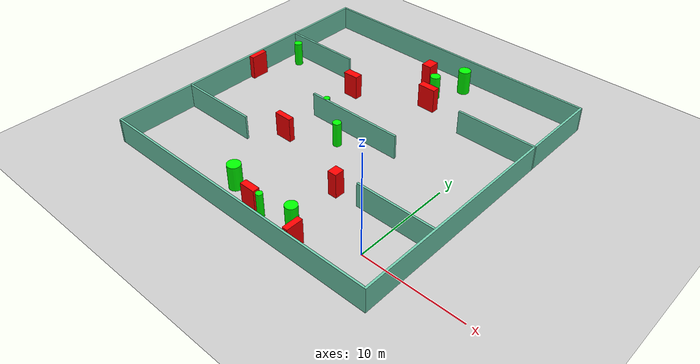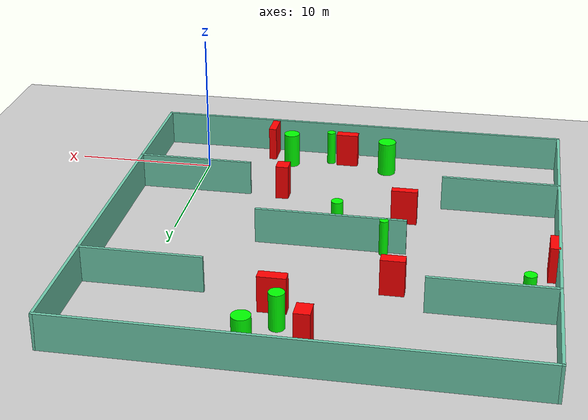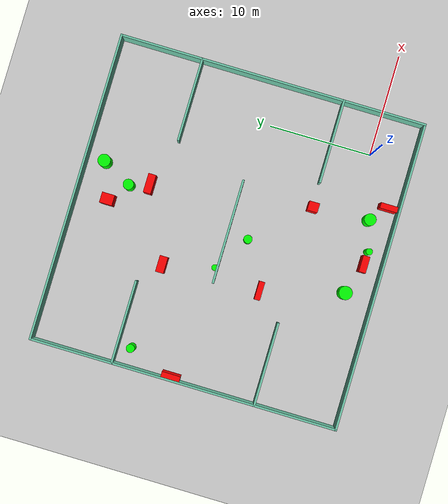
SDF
<sdf version="1.7">
 <world name="default">
  <light name="sun" type="directional">
   <pose>0 0 10 0 -0 0</pose>
   <diffuse>0.8 0.8 0.8 1</diffuse>
   <specular>0.2 0.2 0.2 1</specular>
   <attenuation>
    <range>1000</range>
    <constant>0.9</constant>
    <linear>0.01</linear>
    <quadratic>0.001</quadratic>
   </attenuation>
   <direction>-0.5 0.1 -0.9</direction>
   <spot><inner_angle>0</inner_angle><outer_angle>0</outer_angle><falloff>0</falloff></spot>
  </light>
  <model name="ground_plane">
   <static>1</static>
   <link name="link">
    <collision name="collision">
     <geometry><plane><normal>0 0 1</normal><size>100 100</size></plane></geometry>
     <surface>
      <contact><collide_bitmask>65535</collide_bitmask></contact>
      <friction><ode><mu>100</mu><mu2>50</mu2></ode></friction>
     </surface>
    </collision>
    <visual name="visual">
     <cast_shadows>0</cast_shadows>
     <geometry><plane><normal>0 0 1</normal><size>100 100</size></plane></geometry>
     <material>
      <script><uri>file://media/materials/scripts/gazebo.material</uri><name>Gazebo/Grey</name></script>
     </material>
    </visual>
   </link>
  </model>
  <gravity>0 0 -9.8</gravity>
  <magnetic_field>6e-06 2.3e-05 -4.2e-05</magnetic_field>
  <atmosphere type="adiabatic"/>
  <physics type="ode">
   <max_step_size>0.001</max_step_size>
   <real_time_factor>1</real_time_factor>
   <real_time_update_rate>1000</real_time_update_rate>
  </physics>
  <scene><ambient>0.4 0.4 0.4 1</ambient><background>0.7 0.7 0.7 1</background><shadows>1</shadows></scene>
  <spherical_coordinates>
   <surface_model>EARTH_WGS84</surface_model>
   <latitude_deg>0</latitude_deg>
   <longitude_deg>0</longitude_deg>
   <elevation>0</elevation>
   <heading_deg>0</heading_deg>
  </spherical_coordinates>
  <model name="my_base_walls">
   <link name="Wall_10">
    <collision name="Wall_10_Collision">
     <geometry><box><size>8.2 0.2 2.5</size></box></geometry>
     <pose>0 0 1.25 0 -0 0</pose>
    </collision>
    <visual name="Wall_10_Visual">
     <pose>0 0 1.25 0 -0 0</pose>
     <geometry><box><size>8.2 0.2 2.5</size></box></geometry>
     <material>
      <script><uri>file://media/materials/scripts/gazebo.material</uri><name>Gazebo/Grey</name></script>
      <ambient>0.435294 0.796078 0.67451 1</ambient>
     </material>
     <meta><layer>0</layer></meta>
    </visual>
    <pose>-11 -7 0 0 -0 0</pose>
   </link>
   <link name="Wall_12">
    <collision name="Wall_12_Collision">
     <geometry><box><size>8.2 0.2 2.5</size></box></geometry>
     <pose>0 0 1.25 0 -0 0</pose>
    </collision>
    <visual name="Wall_12_Visual">
     <pose>0 0 1.25 0 -0 0</pose>
     <geometry><box><size>8.2 0.2 2.5</size></box></geometry>
     <material>
      <script><uri>file://media/materials/scripts/gazebo.material</uri><name>Gazebo/Grey</name></script>
      <ambient>0.435294 0.796078 0.67451 1</ambient>
     </material>
     <meta><layer>0</layer></meta>
    </visual>
    <pose>-11 7 0 0 -0 0</pose>
   </link>
   <link name="Wall_14">
    <collision name="Wall_14_Collision">
     <geometry><box><size>8.2 0.2 2.5</size></box></geometry>
     <pose>0 0 1.25 0 -0 0</pose>
    </collision>
    <visual name="Wall_14_Visual">
     <pose>0 0 1.25 0 -0 0</pose>
     <geometry><box><size>8.2 0.2 2.5</size></box></geometry>
     <material>
      <script><uri>file://media/materials/scripts/gazebo.material</uri><name>Gazebo/Grey</name></script>
      <ambient>0.435294 0.796078 0.67451 1</ambient>
     </material>
     <meta><layer>0</layer></meta>
    </visual>
    <pose>11 7 0 0 -0 3.14159</pose>
   </link>
   <link name="Wall_16">
    <collision name="Wall_16_Collision">
     <geometry><box><size>10.2 0.2 2.5</size></box></geometry>
     <pose>0 0 1.25 0 -0 0</pose>
    </collision>
    <visual name="Wall_16_Visual">
     <pose>0 0 1.25 0 -0 0</pose>
     <geometry><box><size>10.2 0.2 2.5</size></box></geometry>
     <material>
      <script><uri>file://media/materials/scripts/gazebo.material</uri><name>Gazebo/Grey</name></script>
      <ambient>0.435294 0.796078 0.67451 1</ambient>
     </material>
     <meta><layer>0</layer></meta>
    </visual>
    <pose>0 0 0 0 -0 3.14159</pose>
   </link>
   <link name="Wall_2">
    <collision name="Wall_2_Collision">
     <geometry><box><size>30.2 0.2 2.5</size></box></geometry>
     <pose>0 0 1.25 0 -0 0</pose>
    </collision>
    <visual name="Wall_2_Visual">
     <pose>0 0 1.25 0 -0 0</pose>
     <geometry><box><size>30.2 0.2 2.5</size></box></geometry>
     <material>
      <script><uri>file://media/materials/scripts/gazebo.material</uri><name>Gazebo/Grey</name></script>
      <ambient>0.435294 0.796078 0.67451 1</ambient>
     </material>
     <meta><layer>0</layer></meta>
    </visual>
    <pose>0 -15 0 0 -0 3.14159</pose>
   </link>
   <link name="Wall_3">
    <collision name="Wall_3_Collision">
     <geometry><box><size>30.2 0.2 2.5</size></box></geometry>
     <pose>0 0 1.25 0 -0 0</pose>
    </collision>
    <visual name="Wall_3_Visual">
     <pose>0 0 1.25 0 -0 0</pose>
     <geometry><box><size>30.2 0.2 2.5</size></box></geometry>
     <material>
      <script><uri>file://media/materials/scripts/gazebo.material</uri><name>Gazebo/Grey</name></script>
      <ambient>0.435294 0.796078 0.67451 1</ambient>
     </material>
     <meta><layer>0</layer></meta>
    </visual>
    <pose>-15 0 0 0 -0 1.5708</pose>
   </link>
   <link name="Wall_4">
    <collision name="Wall_4_Collision">
     <geometry><box><size>30.2 0.2 2.5</size></box></geometry>
     <pose>0 0 1.25 0 -0 0</pose>
    </collision>
    <visual name="Wall_4_Visual">
     <pose>0 0 1.25 0 -0 0</pose>
     <geometry><box><size>30.2 0.2 2.5</size></box></geometry>
     <material>
      <script><uri>file://media/materials/scripts/gazebo.material</uri><name>Gazebo/Grey</name></script>
      <ambient>0.435294 0.796078 0.67451 1</ambient>
     </material>
     <meta><layer>0</layer></meta>
    </visual>
    <pose>0 15 0 0 -0 0</pose>
   </link>
   <link name="Wall_6">
    <collision name="Wall_6_Collision">
     <geometry><box><size>30.2 0.2 2.5</size></box></geometry>
     <pose>0 0 1.25 0 -0 0</pose>
    </collision>
    <visual name="Wall_6_Visual">
     <pose>0 0 1.25 0 -0 0</pose>
     <geometry><box><size>30.2 0.2 2.5</size></box></geometry>
     <material>
      <script><uri>file://media/materials/scripts/gazebo.material</uri><name>Gazebo/Grey</name></script>
      <ambient>0.435294 0.796078 0.67451 1</ambient>
     </material>
     <meta><layer>0</layer></meta>
    </visual>
    <pose>15 0 0 0 -0 1.5708</pose>
   </link>
   <link name="Wall_8">
    <collision name="Wall_8_Collision">
     <geometry><box><size>8.2 0.2 2.5</size></box></geometry>
     <pose>0 0 1.25 0 -0 0</pose>
    </collision>
    <visual name="Wall_8_Visual">
     <pose>0 0 1.25 0 -0 0</pose>
     <geometry><box><size>8.2 0.2 2.5</size></box></geometry>
     <material>
      <script><uri>file://media/materials/scripts/gazebo.material</uri><name>Gazebo/Grey</name></script>
      <ambient>0.435294 0.796078 0.67451 1</ambient>
     </material>
     <meta><layer>0</layer></meta>
    </visual>
    <pose>11 -7 0 0 -0 3.14159</pose>
   </link>
   <static>1</static>
   <pose>-11 11 0 0 -0 0</pose>
  </model>
  <model name="cylinder1">
   <static>1</static>
   <link name="link">
    <inertial>
     <mass>1</mass>
     <inertia><ixx>0.5</ixx><ixy>0</ixy><ixz>0</ixz><iyy>0.5</iyy><iyz>0</iyz><izz>1</izz></inertia>
    </inertial>
    <collision name="collision">
     <geometry><cylinder><radius>0.5112141702430759</radius><length>2.5</length></cylinder></geometry>
    </collision>
    <visual name="visual">
     <geometry><cylinder><radius>0.5112141702430759</radius><length>2.5</length></cylinder></geometry>
     <material>
      <ambient>0 1 0 1</ambient>
      <diffuse>0 1 0 1</diffuse>
      <specular>0.1 0.1 0.1 1</specular>
      <emissive>0 0 0 0</emissive>
     </material>
    </visual>
   </link>
   <pose>-9.407583037831413 21.309932944222105 1.25 0 0 0</pose>
  </model>
  <model name="cylinder2">
   <static>1</static>
   <link name="link">
    <inertial>
     <mass>1</mass>
     <inertia><ixx>0.5</ixx><ixy>0</ixy><ixz>0</ixz><iyy>0.5</iyy><iyz>0</iyz><izz>1</izz></inertia>
    </inertial>
    <collision name="collision">
     <geometry><cylinder><radius>0.31465854298057355</radius><length>2.5</length></cylinder></geometry>
    </collision>
    <visual name="visual">
     <geometry><cylinder><radius>0.31465854298057355</radius><length>2.5</length></cylinder></geometry>
     <material>
      <ambient>0 1 0 1</ambient>
      <diffuse>0 1 0 1</diffuse>
      <specular>0.1 0.1 0.1 1</specular>
      <emissive>0 0 0 0</emissive>
     </material>
    </visual>
   </link>
   <pose>-9.038553170582468 -2.3077874613736156 1.25 0 0 0</pose>
  </model>
  <model name="cylinder3">
   <static>1</static>
   <link name="link">
    <inertial>
     <mass>1</mass>
     <inertia><ixx>0.5</ixx><ixy>0</ixy><ixz>0</ixz><iyy>0.5</iyy><iyz>0</iyz><izz>1</izz></inertia>
    </inertial>
    <collision name="collision">
     <geometry><cylinder><radius>0.4043351050581236</radius><length>2.5</length></cylinder></geometry>
    </collision>
    <visual name="visual">
     <geometry><cylinder><radius>0.4043351050581236</radius><length>2.5</length></cylinder></geometry>
     <material>
      <ambient>0 1 0 1</ambient>
      <diffuse>0 1 0 1</diffuse>
      <specular>0.1 0.1 0.1 1</specular>
      <emissive>0 0 0 0</emissive>
     </material>
    </visual>
   </link>
   <pose>-24.168463784879677 16.68737967273283 1.25 0 0 0</pose>
  </model>
  <model name="cylinder4">
   <static>1</static>
   <link name="link">
    <inertial>
     <mass>1</mass>
     <inertia><ixx>0.5</ixx><ixy>0</ixy><ixz>0</ixz><iyy>0.5</iyy><iyz>0</iyz><izz>1</izz></inertia>
    </inertial>
    <collision name="collision">
     <geometry><cylinder><radius>0.5755831393960633</radius><length>2.5</length></cylinder></geometry>
    </collision>
    <visual name="visual">
     <geometry><cylinder><radius>0.5755831393960633</radius><length>2.5</length></cylinder></geometry>
     <material>
      <ambient>0 1 0 1</ambient>
      <diffuse>0 1 0 1</diffuse>
      <specular>0.1 0.1 0.1 1</specular>
      <emissive>0 0 0 0</emissive>
     </material>
    </visual>
   </link>
   <pose>-6.109986332729996 -1.5430491611297956 1.25 0 0 0</pose>
  </model>
  <model name="cylinder5">
   <static>1</static>
   <link name="link">
    <inertial>
     <mass>1</mass>
     <inertia><ixx>0.5</ixx><ixy>0</ixy><ixz>0</ixz><iyy>0.5</iyy><iyz>0</iyz><izz>1</izz></inertia>
    </inertial>
    <collision name="collision">
     <geometry><cylinder><radius>0.6077018054232866</radius><length>2.5</length></cylinder></geometry>
    </collision>
    <visual name="visual">
     <geometry><cylinder><radius>0.6077018054232866</radius><length>2.5</length></cylinder></geometry>
     <material>
      <ambient>0 1 0 1</ambient>
      <diffuse>0 1 0 1</diffuse>
      <specular>0.1 0.1 0.1 1</specular>
      <emissive>0 0 0 0</emissive>
     </material>
    </visual>
   </link>
   <pose>-7.888673875162217 24.15128527290168 1.25 0 0 0</pose>
  </model>
  <model name="cylinder6">
   <static>1</static>
   <link name="link">
    <inertial>
     <mass>1</mass>
     <inertia><ixx>0.5</ixx><ixy>0</ixy><ixz>0</ixz><iyy>0.5</iyy><iyz>0</iyz><izz>1</izz></inertia>
    </inertial>
    <collision name="collision">
     <geometry><cylinder><radius>0.3037566656871543</radius><length>2.5</length></cylinder></geometry>
    </collision>
    <visual name="visual">
     <geometry><cylinder><radius>0.3037566656871543</radius><length>2.5</length></cylinder></geometry>
     <material>
      <ambient>0 1 0 1</ambient>
      <diffuse>0 1 0 1</diffuse>
      <specular>0.1 0.1 0.1 1</specular>
      <emissive>0 0 0 0</emissive>
     </material>
    </visual>
   </link>
   <pose>-14.622453149024864 11.23719250465918 1.25 0 0 0</pose>
  </model>
  <model name="cylinder7">
   <static>1</static>
   <link name="link">
    <inertial>
     <mass>1</mass>
     <inertia><ixx>0.5</ixx><ixy>0</ixy><ixz>0</ixz><iyy>0.5</iyy><iyz>0</iyz><izz>1</izz></inertia>
    </inertial>
    <collision name="collision">
     <geometry><cylinder><radius>0.6483304566933626</radius><length>2.5</length></cylinder></geometry>
    </collision>
    <visual name="visual">
     <geometry><cylinder><radius>0.6483304566933626</radius><length>2.5</length></cylinder></geometry>
     <material>
      <ambient>0 1 0 1</ambient>
      <diffuse>0 1 0 1</diffuse>
      <specular>0.1 0.1 0.1 1</specular>
      <emissive>0 0 0 0</emissive>
     </material>
    </visual>
   </link>
   <pose>-13.409687927900292 -1.2623893590286954 1.25 0 0 0</pose>
  </model>
  <model name="cylinder8">
   <static>1</static>
   <link name="link">
    <inertial>
     <mass>1</mass>
     <inertia><ixx>0.5</ixx><ixy>0</ixy><ixz>0</ixz><iyy>0.5</iyy><iyz>0</iyz><izz>1</izz></inertia>
    </inertial>
    <collision name="collision">
     <geometry><cylinder><radius>0.41168546491969754</radius><length>2.5</length></cylinder></geometry>
    </collision>
    <visual name="visual">
     <geometry><cylinder><radius>0.41168546491969754</radius><length>2.5</length></cylinder></geometry>
     <material>
      <ambient>0 1 0 1</ambient>
      <diffuse>0 1 0 1</diffuse>
      <specular>0.1 0.1 0.1 1</specular>
      <emissive>0 0 0 0</emissive>
     </material>
    </visual>
   </link>
   <pose>-11.165514259296499 8.999726052935339 1.25 0 0 0</pose>
  </model>
  <model name="box1">
   <static>1</static>
   <link name="link">
    <inertial>
     <mass>1</mass>
     <inertia><ixx>0.083</ixx><ixy>0</ixy><ixz>0</ixz><iyy>0.083</iyy><iyz>0</iyz><izz>0.083</izz></inertia>
    </inertial>
    <collision name="collision">
     <geometry><box><size>0.9080296332588045 0.9966608676599508 2.5</size></box></geometry>
    </collision>
    <visual name="visual">
     <geometry><box><size>0.9080296332588045 0.9966608676599508 2.5</size></box></geometry>
     <material>
      <ambient>1 0 0 1</ambient>
      <diffuse>1 0 0 1</diffuse>
      <specular>0.1 0.1 0.1 1</specular>
      <emissive>0 0 0 0</emissive>
     </material>
    </visual>
    <sensor name="my_contact" type="contact">
     <contact><collision>box_collision</collision><topic>__default_topic__</topic></contact>
    </sensor>
   </link>
   <pose>-6.463874082666777 3.932791686964073 1.25 0 0 0</pose>
  </model>
  <model name="box2">
   <static>1</static>
   <link name="link">
    <inertial>
     <mass>1</mass>
     <inertia><ixx>0.083</ixx><ixy>0</ixy><ixz>0</ixz><iyy>0.083</iyy><iyz>0</iyz><izz>0.083</izz></inertia>
    </inertial>
    <collision name="collision">
     <geometry><box><size>1.8513674004743947 0.7433346144502635 2.5</size></box></geometry>
    </collision>
    <visual name="visual">
     <geometry><box><size>1.8513674004743947 0.7433346144502635 2.5</size></box></geometry>
     <material>
      <ambient>1 0 0 1</ambient>
      <diffuse>1 0 0 1</diffuse>
      <specular>0.1 0.1 0.1 1</specular>
      <emissive>0 0 0 0</emissive>
     </material>
    </visual>
    <sensor name="my_contact" type="contact">
     <contact><collision>box_collision</collision><topic>__default_topic__</topic></contact>
    </sensor>
   </link>
   <pose>-8.769579283396386 19.403731972705792 1.25 0 0 0</pose>
  </model>
  <model name="box3">
   <static>1</static>
   <link name="link">
    <inertial>
     <mass>1</mass>
     <inertia><ixx>0.083</ixx><ixy>0</ixy><ixz>0</ixz><iyy>0.083</iyy><iyz>0</iyz><izz>0.083</izz></inertia>
    </inertial>
    <collision name="collision">
     <geometry><box><size>1.598722138006308 0.6620554858973507 2.5</size></box></geometry>
    </collision>
    <visual name="visual">
     <geometry><box><size>1.598722138006308 0.6620554858973507 2.5</size></box></geometry>
     <material>
      <ambient>1 0 0 1</ambient>
      <diffuse>1 0 0 1</diffuse>
      <specular>0.1 0.1 0.1 1</specular>
      <emissive>0 0 0 0</emissive>
     </material>
    </visual>
    <sensor name="my_contact" type="contact">
     <contact><collision>box_collision</collision><topic>__default_topic__</topic></contact>
    </sensor>
   </link>
   <pose>-10.298371063280582 -2.2083913624231326 1.25 0 0 0</pose>
  </model>
  <model name="box4">
   <static>1</static>
   <link name="link">
    <inertial>
     <mass>1</mass>
     <inertia><ixx>0.083</ixx><ixy>0</ixy><ixz>0</ixz><iyy>0.083</iyy><iyz>0</iyz><izz>0.083</izz></inertia>
    </inertial>
    <collision name="collision">
     <geometry><box><size>1.5921852611563572 0.7852224558211272 2.5</size></box></geometry>
    </collision>
    <visual name="visual">
     <geometry><box><size>1.5921852611563572 0.7852224558211272 2.5</size></box></geometry>
     <material>
      <ambient>1 0 0 1</ambient>
      <diffuse>1 0 0 1</diffuse>
      <specular>0.1 0.1 0.1 1</specular>
      <emissive>0 0 0 0</emissive>
     </material>
    </visual>
    <sensor name="my_contact" type="contact">
     <contact><collision>box_collision</collision><topic>__default_topic__</topic></contact>
    </sensor>
   </link>
   <pose>-15.760882257571012 16.124946318643715 1.25 0 0 0</pose>
  </model>
  <model name="box5">
   <static>1</static>
   <link name="link">
    <inertial>
     <mass>1</mass>
     <inertia><ixx>0.083</ixx><ixy>0</ixy><ixz>0</ixz><iyy>0.083</iyy><iyz>0</iyz><izz>0.083</izz></inertia>
    </inertial>
    <collision name="collision">
     <geometry><box><size>0.5457021378293622 1.6771914437783009 2.5</size></box></geometry>
    </collision>
    <visual name="visual">
     <geometry><box><size>0.5457021378293622 1.6771914437783009 2.5</size></box></geometry>
     <material>
      <ambient>1 0 0 1</ambient>
      <diffuse>1 0 0 1</diffuse>
      <specular>0.1 0.1 0.1 1</specular>
      <emissive>0 0 0 0</emissive>
     </material>
    </visual>
    <sensor name="my_contact" type="contact">
     <contact><collision>box_collision</collision><topic>__default_topic__</topic></contact>
    </sensor>
   </link>
   <pose>-4.506078056628681 -2.9292700020647766 1.25 0 0 0</pose>
  </model>
  <model name="box6">
   <static>1</static>
   <link name="link">
    <inertial>
     <mass>1</mass>
     <inertia><ixx>0.083</ixx><ixy>0</ixy><ixz>0</ixz><iyy>0.083</iyy><iyz>0</iyz><izz>0.083</izz></inertia>
    </inertial>
    <collision name="collision">
     <geometry><box><size>1.7999045997714012 0.5507170307888533 2.5</size></box></geometry>
    </collision>
    <visual name="visual">
     <geometry><box><size>1.7999045997714012 0.5507170307888533 2.5</size></box></geometry>
     <material>
      <ambient>1 0 0 1</ambient>
      <diffuse>1 0 0 1</diffuse>
      <specular>0.1 0.1 0.1 1</specular>
      <emissive>0 0 0 0</emissive>
     </material>
    </visual>
    <sensor name="my_contact" type="contact">
     <contact><collision>box_collision</collision><topic>__default_topic__</topic></contact>
    </sensor>
   </link>
   <pose>-15.51391814716444 6.564114025918061 1.25 0 0 0</pose>
  </model>
  <model name="box7">
   <static>1</static>
   <link name="link">
    <inertial>
     <mass>1</mass>
     <inertia><ixx>0.083</ixx><ixy>0</ixy><ixz>0</ixz><iyy>0.083</iyy><iyz>0</iyz><izz>0.083</izz></inertia>
    </inertial>
    <collision name="collision">
     <geometry><box><size>1.0240414440808518 1.231977797145111 2.5</size></box></geometry>
    </collision>
    <visual name="visual">
     <geometry><box><size>1.0240414440808518 1.231977797145111 2.5</size></box></geometry>
     <material>
      <ambient>1 0 0 1</ambient>
      <diffuse>1 0 0 1</diffuse>
      <specular>0.1 0.1 0.1 1</specular>
      <emissive>0 0 0 0</emissive>
     </material>
    </visual>
    <sensor name="my_contact" type="contact">
     <contact><collision>box_collision</collision><topic>__default_topic__</topic></contact>
    </sensor>
   </link>
   <pose>-11.292276077692039 22.846082430422975 1.25 0 0 0</pose>
  </model>
  <model name="box8">
   <static>1</static>
   <link name="link">
    <inertial>
     <mass>1</mass>
     <inertia><ixx>0.083</ixx><ixy>0</ixy><ixz>0</ixz><iyy>0.083</iyy><iyz>0</iyz><izz>0.083</izz></inertia>
    </inertial>
    <collision name="collision">
     <geometry><box><size>0.6241536025124319 1.812947647703203 2.5</size></box></geometry>
    </collision>
    <visual name="visual">
     <geometry><box><size>0.6241536025124319 1.812947647703203 2.5</size></box></geometry>
     <material>
      <ambient>1 0 0 1</ambient>
      <diffuse>1 0 0 1</diffuse>
      <specular>0.1 0.1 0.1 1</specular>
      <emissive>0 0 0 0</emissive>
     </material>
    </visual>
    <sensor name="my_contact" type="contact">
     <contact><collision>box_collision</collision><topic>__default_topic__</topic></contact>
    </sensor>
   </link>
   <pose>-25.68543991241258 12.303680317765448 1.25 0 0 0</pose>
  </model>
 </world>
</sdf>
